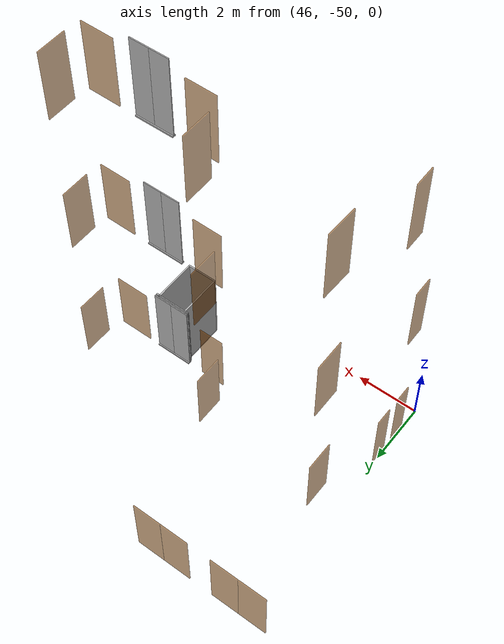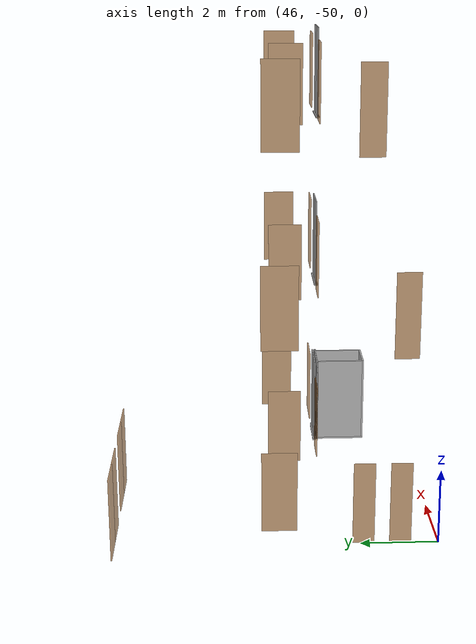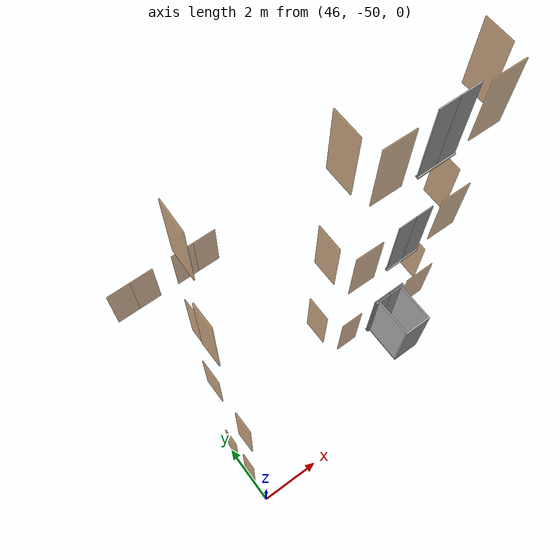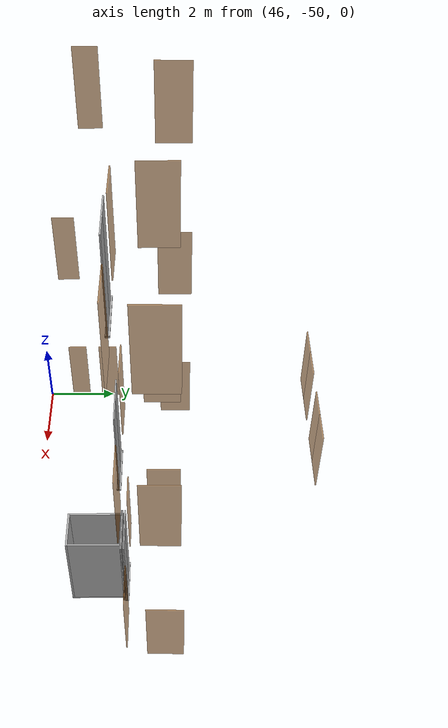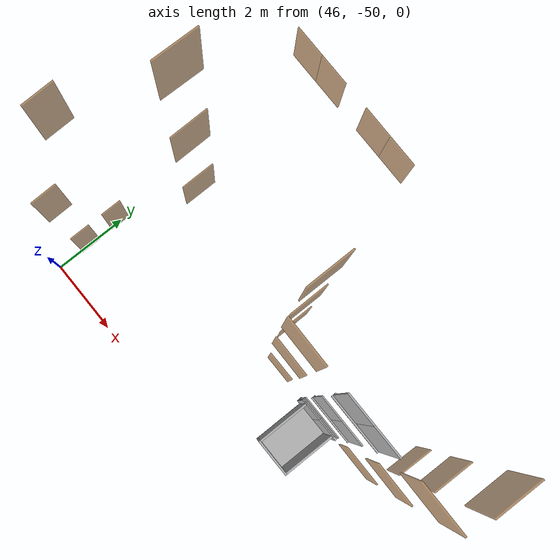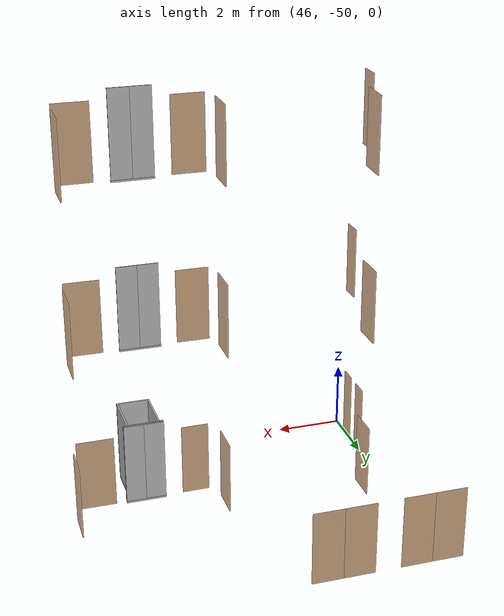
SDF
<sdf version="1.7">
 <world name="sim_world">
  <model name="p34">
   <pose>46.29385055257625 -41.70638647743774 0.0 0 0 0.0</pose>
   <link name="right">
    <pose>0.46290850641462455 0 1.11 0 0 0</pose>
    <visual name="right_visual">
     <geometry><box><size>0.9158170128292491 0.03 2.2</size></box></geometry>
     <material>
      <ambient>0.5 0.25 0 0.6</ambient>
      <diffuse>0.5 0.25 0 0.6</diffuse>
      <pbr><metal><metalness>0.0</metalness></metal></pbr>
     </material>
    </visual>
    <collision name="right_collision">
     <geometry><box><size>0.9158170128292491 0.03 2.2</size></box></geometry>
     <surface><contact><collide_bitmask>0x02</collide_bitmask></contact></surface>
    </collision>
    <inertial>
     <mass>50.0</mass>
     <inertia><ixx>20.17041666666667</ixx><iyy>23.66133667078121</iyy><izz>3.498420004114538</izz></inertia>
    </inertial>
   </link>
   <joint name="right_joint" type="revolute">
    <parent>world</parent>
    <child>right</child>
    <axis><xyz>0 0 -1</xyz><limit><lower>0</lower><upper>1.57</upper></limit></axis>
    <pose>0.46290850641462455 0 0 0 0 0</pose>
   </joint>
   <link name="left">
    <pose>-0.46290850641462455 0 1.11 0 0 0</pose>
    <visual name="left_visual">
     <geometry><box><size>0.9158170128292491 0.03 2.2</size></box></geometry>
     <material>
      <ambient>0.5 0.25 0 0.6</ambient>
      <diffuse>0.5 0.25 0 0.6</diffuse>
      <pbr><metal><metalness>0.0</metalness></metal></pbr>
     </material>
    </visual>
    <collision name="left_collision">
     <geometry><box><size>0.9158170128292491 0.03 2.2</size></box></geometry>
     <surface><contact><collide_bitmask>0x02</collide_bitmask></contact></surface>
    </collision>
    <inertial>
     <mass>50.0</mass>
     <inertia><ixx>20.17041666666667</ixx><iyy>23.66133667078121</iyy><izz>3.498420004114538</izz></inertia>
    </inertial>
   </link>
   <joint name="left_joint" type="revolute">
    <parent>world</parent>
    <child>left</child>
    <axis><xyz>0 0 -1</xyz><limit><lower>-1.57</lower><upper>0</upper></limit></axis>
    <pose>-0.46290850641462455 0 0 0 0 0</pose>
   </joint>
   <plugin name="register_component" filename="libregister_component.so">
    <component name="Door">
     <v_max_door>0.5</v_max_door>
     <a_max_door>0.3</a_max_door>
     <a_nom_door>0.15</a_nom_door>
     <dx_min_door>0.01</dx_min_door>
     <f_max_door>500.0</f_max_door>
     <ros_interface>true</ros_interface>
     <door name="p34" type="DoubleSwingDoor" left_joint_name="left_joint" right_joint_name="right_joint"/>
    </component>
   </plugin>
  </model>
  <model name="p35">
   <pose>48.90069553494715 -41.70801976237745 0.0 0 0 -0.0017695687612104296</pose>
   <link name="right">
    <pose>0.46149260427471434 0 1.11 0 0 0</pose>
    <visual name="right_visual">
     <geometry><box><size>0.9129852085494287 0.03 2.2</size></box></geometry>
     <material>
      <ambient>0.5 0.25 0 0.6</ambient>
      <diffuse>0.5 0.25 0 0.6</diffuse>
      <pbr><metal><metalness>0.0</metalness></metal></pbr>
     </material>
    </visual>
    <collision name="right_collision">
     <geometry><box><size>0.9129852085494287 0.03 2.2</size></box></geometry>
     <surface><contact><collide_bitmask>0x02</collide_bitmask></contact></surface>
    </collision>
    <inertial>
     <mass>50.0</mass>
     <inertia><ixx>20.17041666666667</ixx><iyy>23.639758295958522</iyy><izz>3.4768416292918496</izz></inertia>
    </inertial>
   </link>
   <joint name="right_joint" type="revolute">
    <parent>world</parent>
    <child>right</child>
    <axis><xyz>0 0 -1</xyz><limit><lower>0</lower><upper>1.57</upper></limit></axis>
    <pose>0.46149260427471434 0 0 0 0 0</pose>
   </joint>
   <link name="left">
    <pose>-0.46149260427471434 0 1.11 0 0 0</pose>
    <visual name="left_visual">
     <geometry><box><size>0.9129852085494287 0.03 2.2</size></box></geometry>
     <material>
      <ambient>0.5 0.25 0 0.6</ambient>
      <diffuse>0.5 0.25 0 0.6</diffuse>
      <pbr><metal><metalness>0.0</metalness></metal></pbr>
     </material>
    </visual>
    <collision name="left_collision">
     <geometry><box><size>0.9129852085494287 0.03 2.2</size></box></geometry>
     <surface><contact><collide_bitmask>0x02</collide_bitmask></contact></surface>
    </collision>
    <inertial>
     <mass>50.0</mass>
     <inertia><ixx>20.17041666666667</ixx><iyy>23.639758295958522</iyy><izz>3.4768416292918496</izz></inertia>
    </inertial>
   </link>
   <joint name="left_joint" type="revolute">
    <parent>world</parent>
    <child>left</child>
    <axis><xyz>0 0 -1</xyz><limit><lower>-1.57</lower><upper>0</upper></limit></axis>
    <pose>-0.46149260427471434 0 0 0 0 0</pose>
   </joint>
   <plugin name="register_component" filename="libregister_component.so">
    <component name="Door">
     <v_max_door>0.5</v_max_door>
     <a_max_door>0.3</a_max_door>
     <a_nom_door>0.15</a_nom_door>
     <dx_min_door>0.01</dx_min_door>
     <f_max_door>500.0</f_max_door>
     <ros_interface>true</ros_interface>
     <door name="p35" type="DoubleSwingDoor" left_joint_name="left_joint" right_joint_name="right_joint"/>
    </component>
   </plugin>
  </model>
  <model name="p41">
   <pose>55.26111818909074 -46.233263458860506 0.0 0 0 1.551279389900742</pose>
   <link name="right">
    <pose>0 0 1.11 0 0 0</pose>
    <visual name="right_visual">
     <geometry><box><size>0.9510212232707774 0.03 2.2</size></box></geometry>
     <material>
      <ambient>0.5 0.25 0 0.6</ambient>
      <diffuse>0.5 0.25 0 0.6</diffuse>
      <pbr><metal><metalness>0.0</metalness></metal></pbr>
     </material>
    </visual>
    <collision name="right_collision">
     <geometry><box><size>0.9510212232707774 0.03 2.2</size></box></geometry>
     <surface><contact><collide_bitmask>0x02</collide_bitmask></contact></surface>
    </collision>
    <inertial>
     <mass>50.0</mass>
     <inertia><ixx>20.17041666666667</ixx><iyy>23.935172362964362</iyy><izz>3.7722556962976914</izz></inertia>
    </inertial>
   </link>
   <joint name="right_joint" type="revolute">
    <parent>world</parent>
    <child>right</child>
    <axis><xyz>0 0 1</xyz><limit><lower>0</lower><upper>1.57</upper></limit></axis>
    <pose>0.4805106116353887 0 0 0 0 0</pose>
   </joint>
   <plugin name="register_component" filename="libregister_component.so">
    <component name="Door">
     <v_max_door>0.5</v_max_door>
     <a_max_door>0.3</a_max_door>
     <a_nom_door>0.15</a_nom_door>
     <dx_min_door>0.01</dx_min_door>
     <f_max_door>500.0</f_max_door>
     <ros_interface>true</ros_interface>
     <door name="p41" type="SwingDoor" left_joint_name="empty_joint" right_joint_name="right_joint"/>
    </component>
   </plugin>
  </model>
  <model name="p42">
   <pose>50.91122485259699 -46.28263977363636 0.0 0 0 1.5720512353876241</pose>
   <link name="right">
    <pose>0 0 1.11 0 0 0</pose>
    <visual name="right_visual">
     <geometry><box><size>0.9462168650381387 0.03 2.2</size></box></geometry>
     <material>
      <ambient>0.5 0.25 0 0.6</ambient>
      <diffuse>0.5 0.25 0 0.6</diffuse>
      <pbr><metal><metalness>0.0</metalness></metal></pbr>
     </material>
    </visual>
    <collision name="right_collision">
     <geometry><box><size>0.9462168650381387 0.03 2.2</size></box></geometry>
     <surface><contact><collide_bitmask>0x02</collide_bitmask></contact></surface>
    </collision>
    <inertial>
     <mass>50.0</mass>
     <inertia><ixx>20.17041666666667</ixx><iyy>23.89719314867752</iyy><izz>3.734276482010847</izz></inertia>
    </inertial>
   </link>
   <joint name="right_joint" type="revolute">
    <parent>world</parent>
    <child>right</child>
    <axis><xyz>0 0 -1</xyz><limit><lower>0</lower><upper>1.57</upper></limit></axis>
    <pose>0.47810843251906937 0 0 0 0 0</pose>
   </joint>
   <plugin name="register_component" filename="libregister_component.so">
    <component name="Door">
     <v_max_door>0.5</v_max_door>
     <a_max_door>0.3</a_max_door>
     <a_nom_door>0.15</a_nom_door>
     <dx_min_door>0.01</dx_min_door>
     <f_max_door>500.0</f_max_door>
     <ros_interface>true</ros_interface>
     <door name="p42" type="SwingDoor" left_joint_name="empty_joint" right_joint_name="right_joint"/>
    </component>
   </plugin>
  </model>
  <model name="p43">
   <pose>46.73681520547543 -45.95017184676013 0.0 0 0 1.5707963267948966</pose>
   <link name="right">
    <pose>0 0 1.11 0 0 0</pose>
    <visual name="right_visual">
     <geometry><box><size>0.9288166276554841 0.03 2.2</size></box></geometry>
     <material>
      <ambient>0.5 0.25 0 0.6</ambient>
      <diffuse>0.5 0.25 0 0.6</diffuse>
      <pbr><metal><metalness>0.0</metalness></metal></pbr>
     </material>
    </visual>
    <collision name="right_collision">
     <geometry><box><size>0.9288166276554841 0.03 2.2</size></box></geometry>
     <surface><contact><collide_bitmask>0x02</collide_bitmask></contact></surface>
    </collision>
    <inertial>
     <mass>50.0</mass>
     <inertia><ixx>20.17041666666667</ixx><iyy>23.761251365872113</iyy><izz>3.5983346992054432</izz></inertia>
    </inertial>
   </link>
   <joint name="right_joint" type="revolute">
    <parent>world</parent>
    <child>right</child>
    <axis><xyz>0 0 -1</xyz><limit><lower>0</lower><upper>1.57</upper></limit></axis>
    <pose>0.46940831382774206 0 0 0 0 0</pose>
   </joint>
   <plugin name="register_component" filename="libregister_component.so">
    <component name="Door">
     <v_max_door>0.5</v_max_door>
     <a_max_door>0.3</a_max_door>
     <a_nom_door>0.15</a_nom_door>
     <dx_min_door>0.01</dx_min_door>
     <f_max_door>500.0</f_max_door>
     <ros_interface>true</ros_interface>
     <door name="p43" type="SwingDoor" left_joint_name="empty_joint" right_joint_name="right_joint"/>
    </component>
   </plugin>
  </model>
  <model name="p45">
   <pose>46.03850256288706 -49.02026976978463 0.0 0 0 1.5670113036685058</pose>
   <link name="right">
    <pose>0 0 1.11 0 0 0</pose>
    <visual name="right_visual">
     <geometry><box><size>0.5536095600425348 0.03 2.2</size></box></geometry>
     <material>
      <ambient>0.5 0.25 0 0.6</ambient>
      <diffuse>0.5 0.25 0 0.6</diffuse>
      <pbr><metal><metalness>0.0</metalness></metal></pbr>
     </material>
    </visual>
    <collision name="right_collision">
     <geometry><box><size>0.5536095600425348 0.03 2.2</size></box></geometry>
     <surface><contact><collide_bitmask>0x02</collide_bitmask></contact></surface>
    </collision>
    <inertial>
     <mass>50.0</mass>
     <inertia><ixx>20.17041666666667</ixx><iyy>21.443681437377045</iyy><izz>1.2807647707103709</izz></inertia>
    </inertial>
   </link>
   <joint name="right_joint" type="revolute">
    <parent>world</parent>
    <child>right</child>
    <axis><xyz>0 0 -1</xyz><limit><lower>0</lower><upper>1.57</upper></limit></axis>
    <pose>0.2818047800212674 0 0 0 0 0</pose>
   </joint>
   <plugin name="register_component" filename="libregister_component.so">
    <component name="Door">
     <v_max_door>0.5</v_max_door>
     <a_max_door>0.3</a_max_door>
     <a_nom_door>0.15</a_nom_door>
     <dx_min_door>0.01</dx_min_door>
     <f_max_door>500.0</f_max_door>
     <ros_interface>true</ros_interface>
     <door name="p45" type="SwingDoor" left_joint_name="empty_joint" right_joint_name="right_joint"/>
    </component>
   </plugin>
  </model>
  <model name="p46">
   <pose>46.04051361441146 -48.0743755740571 0.0 0 0 1.5674640512192042</pose>
   <link name="right">
    <pose>0 0 1.11 0 0 0</pose>
    <visual name="right_visual">
     <geometry><box><size>0.556830796609936 0.03 2.2</size></box></geometry>
     <material>
      <ambient>0.5 0.25 0 0.6</ambient>
      <diffuse>0.5 0.25 0 0.6</diffuse>
      <pbr><metal><metalness>0.0</metalness></metal></pbr>
     </material>
    </visual>
    <collision name="right_collision">
     <geometry><box><size>0.556830796609936 0.03 2.2</size></box></geometry>
     <surface><contact><collide_bitmask>0x02</collide_bitmask></contact></surface>
    </collision>
    <inertial>
     <mass>50.0</mass>
     <inertia><ixx>20.17041666666667</ixx><iyy>21.458585566888573</iyy><izz>1.2956689002218995</izz></inertia>
    </inertial>
   </link>
   <joint name="right_joint" type="revolute">
    <parent>world</parent>
    <child>right</child>
    <axis><xyz>0 0 -1</xyz><limit><lower>0</lower><upper>1.57</upper></limit></axis>
    <pose>0.283415398304968 0 0 0 0 0</pose>
   </joint>
   <plugin name="register_component" filename="libregister_component.so">
    <component name="Door">
     <v_max_door>0.5</v_max_door>
     <a_max_door>0.3</a_max_door>
     <a_nom_door>0.15</a_nom_door>
     <dx_min_door>0.01</dx_min_door>
     <f_max_door>500.0</f_max_door>
     <ros_interface>true</ros_interface>
     <door name="p46" type="SwingDoor" left_joint_name="empty_joint" right_joint_name="right_joint"/>
    </component>
   </plugin>
  </model>
  <model name="door3">
   <pose>54.548728185831564 -47.24773340049187 0.0 0 0 -0.003472277558024666</pose>
   <link name="right">
    <pose>0 0 1.11 0 0 0</pose>
    <visual name="right_visual">
     <geometry><box><size>1.1035514967360425 0.03 2.2</size></box></geometry>
     <material>
      <ambient>0.5 0.25 0 0.6</ambient>
      <diffuse>0.5 0.25 0 0.6</diffuse>
      <pbr><metal><metalness>0.0</metalness></metal></pbr>
     </material>
    </visual>
    <collision name="right_collision">
     <geometry><box><size>1.1035514967360425 0.03 2.2</size></box></geometry>
     <surface><contact><collide_bitmask>0x02</collide_bitmask></contact></surface>
    </collision>
    <inertial>
     <mass>50.0</mass>
     <inertia><ixx>20.17041666666667</ixx><iyy>25.240941274784834</iyy><izz>5.078024608118165</izz></inertia>
    </inertial>
   </link>
   <joint name="right_joint" type="revolute">
    <parent>world</parent>
    <child>right</child>
    <axis><xyz>0 0 1</xyz><limit><lower>0</lower><upper>1.57</upper></limit></axis>
    <pose>0.5567757483680212 0 0 0 0 0</pose>
   </joint>
   <plugin name="register_component" filename="libregister_component.so">
    <component name="Door">
     <v_max_door>0.5</v_max_door>
     <a_max_door>0.3</a_max_door>
     <a_nom_door>0.15</a_nom_door>
     <dx_min_door>0.01</dx_min_door>
     <f_max_door>500.0</f_max_door>
     <ros_interface>true</ros_interface>
     <door name="door3" type="SwingDoor" left_joint_name="empty_joint" right_joint_name="right_joint"/>
    </component>
   </plugin>
  </model>
  <model name="door4">
   <pose>51.56220556427961 -47.26404402832512 0.0 0 0 -3.140288306503404</pose>
   <link name="right">
    <pose>0 0 1.11 0 0 0</pose>
    <visual name="right_visual">
     <geometry><box><size>0.807754243674289 0.03 2.2</size></box></geometry>
     <material>
      <ambient>0.5 0.25 0 0.6</ambient>
      <diffuse>0.5 0.25 0 0.6</diffuse>
      <pbr><metal><metalness>0.0</metalness></metal></pbr>
     </material>
    </visual>
    <collision name="right_collision">
     <geometry><box><size>0.807754243674289 0.03 2.2</size></box></geometry>
     <surface><contact><collide_bitmask>0x02</collide_bitmask></contact></surface>
    </collision>
    <inertial>
     <mass>50.0</mass>
     <inertia><ixx>20.17041666666667</ixx><iyy>22.885278825724267</iyy><izz>2.722362159057595</izz></inertia>
    </inertial>
   </link>
   <joint name="right_joint" type="revolute">
    <parent>world</parent>
    <child>right</child>
    <axis><xyz>0 0 -1</xyz><limit><lower>0</lower><upper>1.57</upper></limit></axis>
    <pose>0.40887712183714453 0 0 0 0 0</pose>
   </joint>
   <plugin name="register_component" filename="libregister_component.so">
    <component name="Door">
     <v_max_door>0.5</v_max_door>
     <a_max_door>0.3</a_max_door>
     <a_nom_door>0.15</a_nom_door>
     <dx_min_door>0.01</dx_min_door>
     <f_max_door>500.0</f_max_door>
     <ros_interface>true</ros_interface>
     <door name="door4" type="SwingDoor" left_joint_name="empty_joint" right_joint_name="right_joint"/>
    </component>
   </plugin>
  </model>
  <model name="puerta2">
   <pose>50.90441477776904 -46.285764002202406 5.0 0 0 1.568592011167526</pose>
   <link name="right">
    <pose>0 0 1.11 0 0 0</pose>
    <visual name="right_visual">
     <geometry><box><size>0.9327644348890854 0.03 2.2</size></box></geometry>
     <material>
      <ambient>0.5 0.25 0 0.6</ambient>
      <diffuse>0.5 0.25 0 0.6</diffuse>
      <pbr><metal><metalness>0.0</metalness></metal></pbr>
     </material>
    </visual>
    <collision name="right_collision">
     <geometry><box><size>0.9327644348890854 0.03 2.2</size></box></geometry>
     <surface><contact><collide_bitmask>0x02</collide_bitmask></contact></surface>
    </collision>
    <inertial>
     <mass>50.0</mass>
     <inertia><ixx>20.17041666666667</ixx><iyy>23.791872879141483</iyy><izz>3.6289562124748125</izz></inertia>
    </inertial>
   </link>
   <joint name="right_joint" type="revolute">
    <parent>world</parent>
    <child>right</child>
    <axis><xyz>0 0 -1</xyz><limit><lower>0</lower><upper>1.57</upper></limit></axis>
    <pose>0.47138221744454273 0 0 0 0 0</pose>
   </joint>
   <plugin name="register_component" filename="libregister_component.so">
    <component name="Door">
     <v_max_door>0.5</v_max_door>
     <a_max_door>0.3</a_max_door>
     <a_nom_door>0.15</a_nom_door>
     <dx_min_door>0.01</dx_min_door>
     <f_max_door>500.0</f_max_door>
     <ros_interface>true</ros_interface>
     <door name="puerta2" type="SwingDoor" left_joint_name="empty_joint" right_joint_name="right_joint"/>
    </component>
   </plugin>
  </model>
  <model name="puerta3">
   <pose>46.71412840877268 -45.94401524613693 5.0 0 0 1.5761767900368553</pose>
   <link name="right">
    <pose>0 0 1.11 0 0 0</pose>
    <visual name="right_visual">
     <geometry><box><size>0.9465985025561342 0.03 2.2</size></box></geometry>
     <material>
      <ambient>0.5 0.25 0 0.6</ambient>
      <diffuse>0.5 0.25 0 0.6</diffuse>
      <pbr><metal><metalness>0.0</metalness></metal></pbr>
     </material>
    </visual>
    <collision name="right_collision">
     <geometry><box><size>0.9465985025561342 0.03 2.2</size></box></geometry>
     <surface><contact><collide_bitmask>0x02</collide_bitmask></contact></surface>
    </collision>
    <inertial>
     <mass>50.0</mass>
     <inertia><ixx>20.17041666666667</ixx><iyy>23.90020302100632</iyy><izz>3.7372863543396484</izz></inertia>
    </inertial>
   </link>
   <joint name="right_joint" type="revolute">
    <parent>world</parent>
    <child>right</child>
    <axis><xyz>0 0 -1</xyz><limit><lower>0</lower><upper>1.57</upper></limit></axis>
    <pose>0.4782992512780671 0 0 0 0 0</pose>
   </joint>
   <plugin name="register_component" filename="libregister_component.so">
    <component name="Door">
     <v_max_door>0.5</v_max_door>
     <a_max_door>0.3</a_max_door>
     <a_nom_door>0.15</a_nom_door>
     <dx_min_door>0.01</dx_min_door>
     <f_max_door>500.0</f_max_door>
     <ros_interface>true</ros_interface>
     <door name="puerta3" type="SwingDoor" left_joint_name="empty_joint" right_joint_name="right_joint"/>
    </component>
   </plugin>
  </model>
  <model name="puerta5">
   <pose>46.03935703767312 -49.04455369702251 5.0 0 0 1.5847251683538743</pose>
   <link name="right">
    <pose>0 0 1.11 0 0 0</pose>
    <visual name="right_visual">
     <geometry><box><size>0.6143666957321702 0.03 2.2</size></box></geometry>
     <material>
      <ambient>0.5 0.25 0 0.6</ambient>
      <diffuse>0.5 0.25 0 0.6</diffuse>
      <pbr><metal><metalness>0.0</metalness></metal></pbr>
     </material>
    </visual>
    <collision name="right_collision">
     <geometry><box><size>0.6143666957321702 0.03 2.2</size></box></geometry>
     <surface><contact><collide_bitmask>0x02</collide_bitmask></contact></surface>
    </collision>
    <inertial>
     <mass>50.0</mass>
     <inertia><ixx>20.17041666666667</ixx><iyy>21.73936015343694</iyy><izz>1.5764434867702708</izz></inertia>
    </inertial>
   </link>
   <joint name="right_joint" type="revolute">
    <parent>world</parent>
    <child>right</child>
    <axis><xyz>0 0 -1</xyz><limit><lower>0</lower><upper>1.57</upper></limit></axis>
    <pose>0.3121833478660851 0 0 0 0 0</pose>
   </joint>
   <plugin name="register_component" filename="libregister_component.so">
    <component name="Door">
     <v_max_door>0.5</v_max_door>
     <a_max_door>0.3</a_max_door>
     <a_nom_door>0.15</a_nom_door>
     <dx_min_door>0.01</dx_min_door>
     <f_max_door>500.0</f_max_door>
     <ros_interface>true</ros_interface>
     <door name="puerta5" type="SwingDoor" left_joint_name="empty_joint" right_joint_name="right_joint"/>
    </component>
   </plugin>
  </model>
  <model name="puerta79">
   <pose>51.53598210711936 -47.25297608389258 5.0 0 0 3.1287615406238185</pose>
   <link name="right">
    <pose>0 0 1.11 0 0 0</pose>
    <visual name="right_visual">
     <geometry><box><size>0.9468438838230657 0.03 2.2</size></box></geometry>
     <material>
      <ambient>0.5 0.25 0 0.6</ambient>
      <diffuse>0.5 0.25 0 0.6</diffuse>
      <pbr><metal><metalness>0.0</metalness></metal></pbr>
     </material>
    </visual>
    <collision name="right_collision">
     <geometry><box><size>0.9468438838230657 0.03 2.2</size></box></geometry>
     <surface><contact><collide_bitmask>0x02</collide_bitmask></contact></surface>
    </collision>
    <inertial>
     <mass>50.0</mass>
     <inertia><ixx>20.17041666666667</ixx><iyy>23.902138918054785</iyy><izz>3.7392222513881137</izz></inertia>
    </inertial>
   </link>
   <joint name="right_joint" type="revolute">
    <parent>world</parent>
    <child>right</child>
    <axis><xyz>0 0 -1</xyz><limit><lower>0</lower><upper>1.57</upper></limit></axis>
    <pose>0.47842194191153287 0 0 0 0 0</pose>
   </joint>
   <plugin name="register_component" filename="libregister_component.so">
    <component name="Door">
     <v_max_door>0.5</v_max_door>
     <a_max_door>0.3</a_max_door>
     <a_nom_door>0.15</a_nom_door>
     <dx_min_door>0.01</dx_min_door>
     <f_max_door>500.0</f_max_door>
     <ros_interface>true</ros_interface>
     <door name="puerta79" type="SwingDoor" left_joint_name="empty_joint" right_joint_name="right_joint"/>
    </component>
   </plugin>
  </model>
  <model name="puerta80">
   <pose>54.661752131514476 -47.246197021934165 5.0 0 0 -0.009632428765570475</pose>
   <link name="right">
    <pose>0 0 1.11 0 0 0</pose>
    <visual name="right_visual">
     <geometry><box><size>1.012040966651573 0.03 2.2</size></box></geometry>
     <material>
      <ambient>0.5 0.25 0 0.6</ambient>
      <diffuse>0.5 0.25 0 0.6</diffuse>
      <pbr><metal><metalness>0.0</metalness></metal></pbr>
     </material>
    </visual>
    <collision name="right_collision">
     <geometry><box><size>1.012040966651573 0.03 2.2</size></box></geometry>
     <surface><contact><collide_bitmask>0x02</collide_bitmask></contact></surface>
    </collision>
    <inertial>
     <mass>50.0</mass>
     <inertia><ixx>20.17041666666667</ixx><iyy>24.434278825754383</iyy><izz>4.27136215908771</izz></inertia>
    </inertial>
   </link>
   <joint name="right_joint" type="revolute">
    <parent>world</parent>
    <child>right</child>
    <axis><xyz>0 0 1</xyz><limit><lower>0</lower><upper>1.57</upper></limit></axis>
    <pose>0.5110204833257865 0 0 0 0 0</pose>
   </joint>
   <plugin name="register_component" filename="libregister_component.so">
    <component name="Door">
     <v_max_door>0.5</v_max_door>
     <a_max_door>0.3</a_max_door>
     <a_nom_door>0.15</a_nom_door>
     <dx_min_door>0.01</dx_min_door>
     <f_max_door>500.0</f_max_door>
     <ros_interface>true</ros_interface>
     <door name="puerta80" type="SwingDoor" left_joint_name="empty_joint" right_joint_name="right_joint"/>
    </component>
   </plugin>
  </model>
  <model name="puertaX1">
   <pose>55.23787583629162 -46.29510173818433 5.0 0 0 1.5595580764247505</pose>
   <link name="right">
    <pose>0 0 1.11 0 0 0</pose>
    <visual name="right_visual">
     <geometry><box><size>0.9225990685787344 0.03 2.2</size></box></geometry>
     <material>
      <ambient>0.5 0.25 0 0.6</ambient>
      <diffuse>0.5 0.25 0 0.6</diffuse>
      <pbr><metal><metalness>0.0</metalness></metal></pbr>
     </material>
    </visual>
    <collision name="right_collision">
     <geometry><box><size>0.9225990685787344 0.03 2.2</size></box></geometry>
     <surface><contact><collide_bitmask>0x02</collide_bitmask></contact></surface>
    </collision>
    <inertial>
     <mass>50.0</mass>
     <inertia><ixx>20.17041666666667</ixx><iyy>23.71328767225979</iyy><izz>3.550371005593118</izz></inertia>
    </inertial>
   </link>
   <joint name="right_joint" type="revolute">
    <parent>world</parent>
    <child>right</child>
    <axis><xyz>0 0 1</xyz><limit><lower>0</lower><upper>1.57</upper></limit></axis>
    <pose>0.4662995342893672 0 0 0 0 0</pose>
   </joint>
   <plugin name="register_component" filename="libregister_component.so">
    <component name="Door">
     <v_max_door>0.5</v_max_door>
     <a_max_door>0.3</a_max_door>
     <a_nom_door>0.15</a_nom_door>
     <dx_min_door>0.01</dx_min_door>
     <f_max_door>500.0</f_max_door>
     <ros_interface>true</ros_interface>
     <door name="puertaX1" type="SwingDoor" left_joint_name="empty_joint" right_joint_name="right_joint"/>
    </component>
   </plugin>
  </model>
  <model name="puerta98">
   <pose>50.904524964211674 -46.28589813422583 10.0 0 0 1.5685937216444164</pose>
   <link name="right">
    <pose>0 0 1.11 0 0 0</pose>
    <visual name="right_visual">
     <geometry><box><size>0.9327754535484623 0.03 2.2</size></box></geometry>
     <material>
      <ambient>0.5 0.25 0 0.6</ambient>
      <diffuse>0.5 0.25 0 0.6</diffuse>
      <pbr><metal><metalness>0.0</metalness></metal></pbr>
     </material>
    </visual>
    <collision name="right_collision">
     <geometry><box><size>0.9327754535484623 0.03 2.2</size></box></geometry>
     <surface><contact><collide_bitmask>0x02</collide_bitmask></contact></surface>
    </collision>
    <inertial>
     <mass>50.0</mass>
     <inertia><ixx>20.17041666666667</ixx><iyy>23.79195852809392</iyy><izz>3.629041861427248</izz></inertia>
    </inertial>
   </link>
   <joint name="right_joint" type="revolute">
    <parent>world</parent>
    <child>right</child>
    <axis><xyz>0 0 -1</xyz><limit><lower>0</lower><upper>1.57</upper></limit></axis>
    <pose>0.47138772677423113 0 0 0 0 0</pose>
   </joint>
   <plugin name="register_component" filename="libregister_component.so">
    <component name="Door">
     <v_max_door>0.5</v_max_door>
     <a_max_door>0.3</a_max_door>
     <a_nom_door>0.15</a_nom_door>
     <dx_min_door>0.01</dx_min_door>
     <f_max_door>500.0</f_max_door>
     <ros_interface>true</ros_interface>
     <door name="puerta98" type="SwingDoor" left_joint_name="empty_joint" right_joint_name="right_joint"/>
    </component>
   </plugin>
  </model>
  <model name="puerta99">
   <pose>46.729836886624746 -45.954773548275355 10.0 0 0 1.5428493856564143</pose>
   <link name="right">
    <pose>0 0 1.11 0 0 0</pose>
    <visual name="right_visual">
     <geometry><box><size>0.9257192230852094 0.03 2.2</size></box></geometry>
     <material>
      <ambient>0.5 0.25 0 0.6</ambient>
      <diffuse>0.5 0.25 0 0.6</diffuse>
      <pbr><metal><metalness>0.0</metalness></metal></pbr>
     </material>
    </visual>
    <collision name="right_collision">
     <geometry><box><size>0.9257192230852094 0.03 2.2</size></box></geometry>
     <surface><contact><collide_bitmask>0x02</collide_bitmask></contact></surface>
    </collision>
    <inertial>
     <mass>50.0</mass>
     <inertia><ixx>20.17041666666667</ixx><iyy>23.73731699995619</iyy><izz>3.5744003332895153</izz></inertia>
    </inertial>
   </link>
   <joint name="right_joint" type="revolute">
    <parent>world</parent>
    <child>right</child>
    <axis><xyz>0 0 -1</xyz><limit><lower>0</lower><upper>1.57</upper></limit></axis>
    <pose>0.4678596115426047 0 0 0 0 0</pose>
   </joint>
   <plugin name="register_component" filename="libregister_component.so">
    <component name="Door">
     <v_max_door>0.5</v_max_door>
     <a_max_door>0.3</a_max_door>
     <a_nom_door>0.15</a_nom_door>
     <dx_min_door>0.01</dx_min_door>
     <f_max_door>500.0</f_max_door>
     <ros_interface>true</ros_interface>
     <door name="puerta99" type="SwingDoor" left_joint_name="empty_joint" right_joint_name="right_joint"/>
    </component>
   </plugin>
  </model>
  <model name="puerta100">
   <pose>46.031698010373894 -48.07843187180002 10.0 0 0 1.5812657956624059</pose>
   <link name="right">
    <pose>0 0 1.11 0 0 0</pose>
    <visual name="right_visual">
     <geometry><box><size>0.6234828103584112 0.03 2.2</size></box></geometry>
     <material>
      <ambient>0.5 0.25 0 0.6</ambient>
      <diffuse>0.5 0.25 0 0.6</diffuse>
      <pbr><metal><metalness>0.0</metalness></metal></pbr>
     </material>
    </visual>
    <collision name="right_collision">
     <geometry><box><size>0.6234828103584112 0.03 2.2</size></box></geometry>
     <surface><contact><collide_bitmask>0x02</collide_bitmask></contact></surface>
    </collision>
    <inertial>
     <mass>50.0</mass>
     <inertia><ixx>20.17041666666667</ixx><iyy>21.786378395051766</iyy><izz>1.6234617283850943</izz></inertia>
    </inertial>
   </link>
   <joint name="right_joint" type="revolute">
    <parent>world</parent>
    <child>right</child>
    <axis><xyz>0 0 -1</xyz><limit><lower>0</lower><upper>1.57</upper></limit></axis>
    <pose>0.3167414051792056 0 0 0 0 0</pose>
   </joint>
   <plugin name="register_component" filename="libregister_component.so">
    <component name="Door">
     <v_max_door>0.5</v_max_door>
     <a_max_door>0.3</a_max_door>
     <a_nom_door>0.15</a_nom_door>
     <dx_min_door>0.01</dx_min_door>
     <f_max_door>500.0</f_max_door>
     <ros_interface>true</ros_interface>
     <door name="puerta100" type="SwingDoor" left_joint_name="empty_joint" right_joint_name="right_joint"/>
    </component>
   </plugin>
  </model>
  <model name="puerta153">
   <pose>51.53610132948449 -47.2531204400145 10.0 0 0 3.1287632511007004</pose>
   <link name="right">
    <pose>0 0 1.11 0 0 0</pose>
    <visual name="right_visual">
     <geometry><box><size>0.9468550670375134 0.03 2.2</size></box></geometry>
     <material>
      <ambient>0.5 0.25 0 0.6</ambient>
      <diffuse>0.5 0.25 0 0.6</diffuse>
      <pbr><metal><metalness>0.0</metalness></metal></pbr>
     </material>
    </visual>
    <collision name="right_collision">
     <geometry><box><size>0.9468550670375134 0.03 2.2</size></box></geometry>
     <surface><contact><collide_bitmask>0x02</collide_bitmask></contact></surface>
    </collision>
    <inertial>
     <mass>50.0</mass>
     <inertia><ixx>20.17041666666667</ixx><iyy>23.902227158227564</iyy><izz>3.739310491560892</izz></inertia>
    </inertial>
   </link>
   <joint name="right_joint" type="revolute">
    <parent>world</parent>
    <child>right</child>
    <axis><xyz>0 0 -1</xyz><limit><lower>0</lower><upper>1.57</upper></limit></axis>
    <pose>0.4784275335187567 0 0 0 0 0</pose>
   </joint>
   <plugin name="register_component" filename="libregister_component.so">
    <component name="Door">
     <v_max_door>0.5</v_max_door>
     <a_max_door>0.3</a_max_door>
     <a_nom_door>0.15</a_nom_door>
     <dx_min_door>0.01</dx_min_door>
     <f_max_door>500.0</f_max_door>
     <ros_interface>true</ros_interface>
     <door name="puerta153" type="SwingDoor" left_joint_name="empty_joint" right_joint_name="right_joint"/>
    </component>
   </plugin>
  </model>
  <model name="puerta154">
   <pose>54.66190787504836 -47.24633595220523 10.0 0 0 -0.009630718288678595</pose>
   <link name="right">
    <pose>0 0 1.11 0 0 0</pose>
    <visual name="right_visual">
     <geometry><box><size>1.0120529118638444 0.03 2.2</size></box></geometry>
     <material>
      <ambient>0.5 0.25 0 0.6</ambient>
      <diffuse>0.5 0.25 0 0.6</diffuse>
      <pbr><metal><metalness>0.0</metalness></metal></pbr>
     </material>
    </visual>
    <collision name="right_collision">
     <geometry><box><size>1.0120529118638444 0.03 2.2</size></box></geometry>
     <surface><contact><collide_bitmask>0x02</collide_bitmask></contact></surface>
    </collision>
    <inertial>
     <mass>50.0</mass>
     <inertia><ixx>20.17041666666667</ixx><iyy>24.434379568383697</iyy><izz>4.271462901717026</izz></inertia>
    </inertial>
   </link>
   <joint name="right_joint" type="revolute">
    <parent>world</parent>
    <child>right</child>
    <axis><xyz>0 0 1</xyz><limit><lower>0</lower><upper>1.57</upper></limit></axis>
    <pose>0.5110264559319222 0 0 0 0 0</pose>
   </joint>
   <plugin name="register_component" filename="libregister_component.so">
    <component name="Door">
     <v_max_door>0.5</v_max_door>
     <a_max_door>0.3</a_max_door>
     <a_nom_door>0.15</a_nom_door>
     <dx_min_door>0.01</dx_min_door>
     <f_max_door>500.0</f_max_door>
     <ros_interface>true</ros_interface>
     <door name="puerta154" type="SwingDoor" left_joint_name="empty_joint" right_joint_name="right_joint"/>
    </component>
   </plugin>
  </model>
  <model name="puerta172">
   <pose>55.2380366864861 -46.29522856697193 10.0 0 0 1.5595597869016329</pose>
   <link name="right">
    <pose>0 0 1.11 0 0 0</pose>
    <visual name="right_visual">
     <geometry><box><size>0.9226099684293319 0.03 2.2</size></box></geometry>
     <material>
      <ambient>0.5 0.25 0 0.6</ambient>
      <diffuse>0.5 0.25 0 0.6</diffuse>
      <pbr><metal><metalness>0.0</metalness></metal></pbr>
     </material>
    </visual>
    <collision name="right_collision">
     <geometry><box><size>0.9226099684293319 0.03 2.2</size></box></geometry>
     <surface><contact><collide_bitmask>0x02</collide_bitmask></contact></surface>
    </collision>
    <inertial>
     <mass>50.0</mass>
     <inertia><ixx>20.17041666666667</ixx><iyy>23.713371474354894</iyy><izz>3.55045480768822</izz></inertia>
    </inertial>
   </link>
   <joint name="right_joint" type="revolute">
    <parent>world</parent>
    <child>right</child>
    <axis><xyz>0 0 1</xyz><limit><lower>0</lower><upper>1.57</upper></limit></axis>
    <pose>0.46630498421466593 0 0 0 0 0</pose>
   </joint>
   <plugin name="register_component" filename="libregister_component.so">
    <component name="Door">
     <v_max_door>0.5</v_max_door>
     <a_max_door>0.3</a_max_door>
     <a_nom_door>0.15</a_nom_door>
     <dx_min_door>0.01</dx_min_door>
     <f_max_door>500.0</f_max_door>
     <ros_interface>true</ros_interface>
     <door name="puerta172" type="SwingDoor" left_joint_name="empty_joint" right_joint_name="right_joint"/>
    </component>
   </plugin>
  </model>
  <model name="ShaftDoor_left_common_lift_L0_left_common_lift_door">
   <pose>53.08019533356709 -47.28836599552725 0.0 0 0 0.0</pose>
   <link name="right_door">
    <pose>0.3 0 1.25 0 0 0</pose>
    <visual name="right_door_visual">
     <geometry><box><size>0.6 0.03 2.5</size></box></geometry>
     <material>
      <ambient>0.5 0.5 0.5 1</ambient>
      <diffuse>0.7 0.7 0.7 1</diffuse>
      <specular>0.6 0.6 0.6 1</specular>
      <emissive>0.1 0.1 0.1 1</emissive>
     </material>
    </visual>
    <collision name="right_door_collision">
     <geometry><box><size>0.6 0.03 2.5</size></box></geometry>
     <surface><contact><collide_bitmask>0x02</collide_bitmask></contact></surface>
    </collision>
   </link>
   <link name="left_door">
    <pose>-0.3 0 1.25 0 0 0</pose>
    <visual name="left_door_visual">
     <geometry><box><size>0.6 0.03 2.5</size></box></geometry>
     <material>
      <ambient>0.5 0.5 0.5 1</ambient>
      <diffuse>0.7 0.7 0.7 1</diffuse>
      <specular>0.6 0.6 0.6 1</specular>
      <emissive>0.1 0.1 0.1 1</emissive>
     </material>
    </visual>
    <collision name="left_door_collision">
     <geometry><box><size>0.6 0.03 2.5</size></box></geometry>
     <surface><contact><collide_bitmask>0x02</collide_bitmask></contact></surface>
    </collision>
   </link>
   <joint name="right_joint" type="prismatic">
    <parent>world</parent>
    <child>right_door</child>
    <axis><xyz>1 0 0</xyz><limit><lower>0</lower><upper>0.6</upper></limit></axis>
   </joint>
   <joint name="left_joint" type="prismatic">
    <parent>world</parent>
    <child>left_door</child>
    <axis><xyz>1 0 0</xyz><limit><lower>-0.6</lower><upper>0</upper></limit></axis>
   </joint>
   <link name="ramp">
    <pose>0 0 -0.025 0 0 0</pose>
    <visual name="ramp_visual">
     <geometry><box><size>1.2 0.1 0.05</size></box></geometry>
     <material>
      <ambient>0.5 0.5 0.5 1</ambient>
      <diffuse>0.7 0.7 0.7 1</diffuse>
      <specular>0.6 0.6 0.6 1</specular>
      <emissive>0.1 0.1 0.1 1</emissive>
     </material>
    </visual>
    <collision name="ramp_collision">
     <geometry><box><size>1.2 0.1 0.05</size></box></geometry>
     <surface><contact><collide_bitmask>0x02</collide_bitmask></contact></surface>
    </collision>
   </link>
   <joint name="ramp_joint" type="fixed"><parent>world</parent><child>ramp</child></joint>
   <plugin name="register_component" filename="libregister_component.so">
    <component name="Door">
     <v_max_door>0.3</v_max_door>
     <a_max_door>0.2</a_max_door>
     <a_nom_door>0.1</a_nom_door>
     <dx_min_door>0.0001</dx_min_door>
     <f_max_door>35.0</f_max_door>
     <door left_joint_name="left_joint" name="ShaftDoor_left_common_lift_L0_left_common_lift_door" right_joint_name="right_joint" type="DoubleSlidingDoor"/>
    </component>
   </plugin>
  </model>
  <model name="ShaftDoor_left_common_lift_L1_left_common_lift_door">
   <pose>53.08019533356709 -47.28836599552725 5.0 0 0 0.0</pose>
   <link name="right_door">
    <pose>0.3 0 1.25 0 0 0</pose>
    <visual name="right_door_visual">
     <geometry><box><size>0.6 0.03 2.5</size></box></geometry>
     <material>
      <ambient>0.5 0.5 0.5 1</ambient>
      <diffuse>0.7 0.7 0.7 1</diffuse>
      <specular>0.6 0.6 0.6 1</specular>
      <emissive>0.1 0.1 0.1 1</emissive>
     </material>
    </visual>
    <collision name="right_door_collision">
     <geometry><box><size>0.6 0.03 2.5</size></box></geometry>
     <surface><contact><collide_bitmask>0x02</collide_bitmask></contact></surface>
    </collision>
   </link>
   <link name="left_door">
    <pose>-0.3 0 1.25 0 0 0</pose>
    <visual name="left_door_visual">
     <geometry><box><size>0.6 0.03 2.5</size></box></geometry>
     <material>
      <ambient>0.5 0.5 0.5 1</ambient>
      <diffuse>0.7 0.7 0.7 1</diffuse>
      <specular>0.6 0.6 0.6 1</specular>
      <emissive>0.1 0.1 0.1 1</emissive>
     </material>
    </visual>
    <collision name="left_door_collision">
     <geometry><box><size>0.6 0.03 2.5</size></box></geometry>
     <surface><contact><collide_bitmask>0x02</collide_bitmask></contact></surface>
    </collision>
   </link>
   <joint name="right_joint" type="prismatic">
    <parent>world</parent>
    <child>right_door</child>
    <axis><xyz>1 0 0</xyz><limit><lower>0</lower><upper>0.6</upper></limit></axis>
   </joint>
   <joint name="left_joint" type="prismatic">
    <parent>world</parent>
    <child>left_door</child>
    <axis><xyz>1 0 0</xyz><limit><lower>-0.6</lower><upper>0</upper></limit></axis>
   </joint>
   <link name="ramp">
    <pose>0 0 -0.025 0 0 0</pose>
    <visual name="ramp_visual">
     <geometry><box><size>1.2 0.1 0.05</size></box></geometry>
     <material>
      <ambient>0.5 0.5 0.5 1</ambient>
      <diffuse>0.7 0.7 0.7 1</diffuse>
      <specular>0.6 0.6 0.6 1</specular>
      <emissive>0.1 0.1 0.1 1</emissive>
     </material>
    </visual>
    <collision name="ramp_collision">
     <geometry><box><size>1.2 0.1 0.05</size></box></geometry>
     <surface><contact><collide_bitmask>0x02</collide_bitmask></contact></surface>
    </collision>
   </link>
   <joint name="ramp_joint" type="fixed"><parent>world</parent><child>ramp</child></joint>
   <plugin name="register_component" filename="libregister_component.so">
    <component name="Door">
     <v_max_door>0.3</v_max_door>
     <a_max_door>0.2</a_max_door>
     <a_nom_door>0.1</a_nom_door>
     <dx_min_door>0.0001</dx_min_door>
     <f_max_door>35.0</f_max_door>
     <door left_joint_name="left_joint" name="ShaftDoor_left_common_lift_L1_left_common_lift_door" right_joint_name="right_joint" type="DoubleSlidingDoor"/>
    </component>
   </plugin>
  </model>
  <model name="ShaftDoor_left_common_lift_L2_left_common_lift_door">
   <pose>53.08019533356709 -47.28836599552725 10.0 0 0 0.0</pose>
   <link name="right_door">
    <pose>0.3 0 1.25 0 0 0</pose>
    <visual name="right_door_visual">
     <geometry><box><size>0.6 0.03 2.5</size></box></geometry>
     <material>
      <ambient>0.5 0.5 0.5 1</ambient>
      <diffuse>0.7 0.7 0.7 1</diffuse>
      <specular>0.6 0.6 0.6 1</specular>
      <emissive>0.1 0.1 0.1 1</emissive>
     </material>
    </visual>
    <collision name="right_door_collision">
     <geometry><box><size>0.6 0.03 2.5</size></box></geometry>
     <surface><contact><collide_bitmask>0x02</collide_bitmask></contact></surface>
    </collision>
   </link>
   <link name="left_door">
    <pose>-0.3 0 1.25 0 0 0</pose>
    <visual name="left_door_visual">
     <geometry><box><size>0.6 0.03 2.5</size></box></geometry>
     <material>
      <ambient>0.5 0.5 0.5 1</ambient>
      <diffuse>0.7 0.7 0.7 1</diffuse>
      <specular>0.6 0.6 0.6 1</specular>
      <emissive>0.1 0.1 0.1 1</emissive>
     </material>
    </visual>
    <collision name="left_door_collision">
     <geometry><box><size>0.6 0.03 2.5</size></box></geometry>
     <surface><contact><collide_bitmask>0x02</collide_bitmask></contact></surface>
    </collision>
   </link>
   <joint name="right_joint" type="prismatic">
    <parent>world</parent>
    <child>right_door</child>
    <axis><xyz>1 0 0</xyz><limit><lower>0</lower><upper>0.6</upper></limit></axis>
   </joint>
   <joint name="left_joint" type="prismatic">
    <parent>world</parent>
    <child>left_door</child>
    <axis><xyz>1 0 0</xyz><limit><lower>-0.6</lower><upper>0</upper></limit></axis>
   </joint>
   <link name="ramp">
    <pose>0 0 -0.025 0 0 0</pose>
    <visual name="ramp_visual">
     <geometry><box><size>1.2 0.1 0.05</size></box></geometry>
     <material>
      <ambient>0.5 0.5 0.5 1</ambient>
      <diffuse>0.7 0.7 0.7 1</diffuse>
      <specular>0.6 0.6 0.6 1</specular>
      <emissive>0.1 0.1 0.1 1</emissive>
     </material>
    </visual>
    <collision name="ramp_collision">
     <geometry><box><size>1.2 0.1 0.05</size></box></geometry>
     <surface><contact><collide_bitmask>0x02</collide_bitmask></contact></surface>
    </collision>
   </link>
   <joint name="ramp_joint" type="fixed"><parent>world</parent><child>ramp</child></joint>
   <plugin name="register_component" filename="libregister_component.so">
    <component name="Door">
     <v_max_door>0.3</v_max_door>
     <a_max_door>0.2</a_max_door>
     <a_nom_door>0.1</a_nom_door>
     <dx_min_door>0.0001</dx_min_door>
     <f_max_door>35.0</f_max_door>
     <door left_joint_name="left_joint" name="ShaftDoor_left_common_lift_L2_left_common_lift_door" right_joint_name="right_joint" type="DoubleSlidingDoor"/>
    </component>
   </plugin>
  </model>
  <model name="left_common_lift">
   <link name="platform">
    <inertial><mass>1200</mass><inertia><ixx>100.25</ixx><iyy>210.5</iyy><izz>310.25</izz></inertia></inertial>
    <visual name="floor_visual">
     <pose>0 0 -0.025 0 0 0</pose>
     <geometry><box><size>1.0 1.45 0.05</size></box></geometry>
     <material>
      <ambient>0.5 0.5 0.5 1</ambient>
      <diffuse>0.7 0.7 0.7 1</diffuse>
      <specular>0.6 0.6 0.6 1</specular>
      <emissive>0.1 0.1 0.1 1</emissive>
     </material>
    </visual>
    <collision name="floor_collision">
     <pose>0 0 -0.025 0 0 0</pose>
     <geometry><box><size>1.0 1.45 0.05</size></box></geometry>
     <surface><contact><collide_bitmask>0x01</collide_bitmask></contact></surface>
    </collision>
    <visual name="frontwall1_visual">
     <pose>-0.55 0.7 1.25 0 0 0</pose>
     <geometry><box><size>0.09999999999999998 0.05 2.5</size></box></geometry>
     <material>
      <ambient>0.5 0.5 0.5 1</ambient>
      <diffuse>0.7 0.7 0.7 1</diffuse>
      <specular>0.6 0.6 0.6 1</specular>
      <emissive>0.1 0.1 0.1 1</emissive>
     </material>
    </visual>
    <collision name="frontwall1_collision">
     <pose>-0.55 0.7 1.25 0 0 0</pose>
     <geometry><box><size>0.09999999999999998 0.05 2.5</size></box></geometry>
     <surface><contact><collide_bitmask>0x01</collide_bitmask></contact></surface>
    </collision>
    <visual name="frontwall2_visual">
     <pose>0.55 0.7 1.25 0 0 0</pose>
     <geometry><box><size>0.09999999999999998 0.05 2.5</size></box></geometry>
     <material>
      <ambient>0.5 0.5 0.5 1</ambient>
      <diffuse>0.7 0.7 0.7 1</diffuse>
      <specular>0.6 0.6 0.6 1</specular>
      <emissive>0.1 0.1 0.1 1</emissive>
     </material>
    </visual>
    <collision name="frontwall2_collision">
     <pose>0.55 0.7 1.25 0 0 0</pose>
     <geometry><box><size>0.09999999999999998 0.05 2.5</size></box></geometry>
     <surface><contact><collide_bitmask>0x01</collide_bitmask></contact></surface>
    </collision>
    <visual name="backwall1_visual">
     <pose>0.0 -0.7 1.25 0 0 0</pose>
     <geometry><box><size>1.0 0.05 2.5</size></box></geometry>
     <material>
      <ambient>0.5 0.5 0.5 1</ambient>
      <diffuse>0.7 0.7 0.7 1</diffuse>
      <specular>0.6 0.6 0.6 1</specular>
      <emissive>0.1 0.1 0.1 1</emissive>
     </material>
    </visual>
    <collision name="backwall1_collision">
     <pose>0.0 -0.7 1.25 0 0 0</pose>
     <geometry><box><size>1.0 0.05 2.5</size></box></geometry>
     <surface><contact><collide_bitmask>0x01</collide_bitmask></contact></surface>
    </collision>
    <visual name="leftwall1_visual">
     <pose>-0.475 0.0 1.25 0 0 1.5707963267948966</pose>
     <geometry><box><size>1.3499999999999999 0.05 2.5</size></box></geometry>
     <material>
      <ambient>0.5 0.5 0.5 1</ambient>
      <diffuse>0.7 0.7 0.7 1</diffuse>
      <specular>0.6 0.6 0.6 1</specular>
      <emissive>0.1 0.1 0.1 1</emissive>
     </material>
    </visual>
    <collision name="leftwall1_collision">
     <pose>-0.475 0.0 1.25 0 0 1.5707963267948966</pose>
     <geometry><box><size>1.3499999999999999 0.05 2.5</size></box></geometry>
     <surface><contact><collide_bitmask>0x01</collide_bitmask></contact></surface>
    </collision>
    <visual name="rightwall1_visual">
     <pose>0.475 0.0 1.25 0 0 1.5707963267948966</pose>
     <geometry><box><size>1.3499999999999999 0.05 2.5</size></box></geometry>
     <material>
      <ambient>0.5 0.5 0.5 1</ambient>
      <diffuse>0.7 0.7 0.7 1</diffuse>
      <specular>0.6 0.6 0.6 1</specular>
      <emissive>0.1 0.1 0.1 1</emissive>
     </material>
    </visual>
    <collision name="rightwall1_collision">
     <pose>0.475 0.0 1.25 0 0 1.5707963267948966</pose>
     <geometry><box><size>1.3499999999999999 0.05 2.5</size></box></geometry>
     <surface><contact><collide_bitmask>0x01</collide_bitmask></contact></surface>
    </collision>
   </link>
   <joint name="cabin_joint" type="prismatic">
    <parent>world</parent>
    <child>platform</child>
    <axis><xyz>0 0 1</xyz></axis>
   </joint>
   <model name="CabinDoor_left_common_lift_left_common_lift_door">
    <pose>0.0 0.7 0 0 0 0.0</pose>
    <link name="right_door">
     <pose>0.3 0 1.25 0 0 0</pose>
     <visual name="right_door_visual">
      <geometry><box><size>0.6 0.03 2.5</size></box></geometry>
      <material>
       <ambient>0.5 0.5 0.5 1</ambient>
       <diffuse>0.7 0.7 0.7 1</diffuse>
       <specular>0.6 0.6 0.6 1</specular>
       <emissive>0.1 0.1 0.1 1</emissive>
      </material>
     </visual>
     <collision name="right_door_collision">
      <geometry><box><size>0.6 0.03 2.5</size></box></geometry>
      <surface><contact><collide_bitmask>0x02</collide_bitmask></contact></surface>
     </collision>
    </link>
    <link name="left_door">
     <pose>-0.3 0 1.25 0 0 0</pose>
     <visual name="left_door_visual">
      <geometry><box><size>0.6 0.03 2.5</size></box></geometry>
      <material>
       <ambient>0.5 0.5 0.5 1</ambient>
       <diffuse>0.7 0.7 0.7 1</diffuse>
       <specular>0.6 0.6 0.6 1</specular>
       <emissive>0.1 0.1 0.1 1</emissive>
      </material>
     </visual>
     <collision name="left_door_collision">
      <geometry><box><size>0.6 0.03 2.5</size></box></geometry>
      <surface><contact><collide_bitmask>0x02</collide_bitmask></contact></surface>
     </collision>
    </link>
    <plugin name="register_component" filename="libregister_component.so">
     <component name="Door">
      <v_max_door>0.3</v_max_door>
      <a_max_door>0.2</a_max_door>
      <a_nom_door>0.1</a_nom_door>
      <dx_min_door>0.0001</dx_min_door>
      <f_max_door>35.0</f_max_door>
      <door left_joint_name="CabinDoor_left_common_lift_left_common_lift_door_left_joint" name="CabinDoor_left_common_lift_left_common_lift_door" right_joint_name="CabinDoor_left_common_lift_left_common_lift_door_right_joint" type="DoubleSlidingDoor"/>
     </component>
    </plugin>
   </model>
   <joint name="CabinDoor_left_common_lift_left_common_lift_door_right_joint" type="prismatic">
    <parent>platform</parent>
    <child>CabinDoor_left_common_lift_left_common_lift_door::right_door</child>
    <axis><xyz>1 0 0</xyz><limit><lower>0</lower><upper>0.6</upper></limit></axis>
   </joint>
   <joint name="CabinDoor_left_common_lift_left_common_lift_door_left_joint" type="prismatic">
    <parent>platform</parent>
    <child>CabinDoor_left_common_lift_left_common_lift_door::left_door</child>
    <axis><xyz>1 0 0</xyz><limit><lower>-0.6</lower><upper>0</upper></limit></axis>
   </joint>
   <plugin name="register_component" filename="libregister_component.so">
    <component name="Lift">
     <lift_name>left_common_lift</lift_name>
     <floor name="L0" elevation="0.0">
      <door_pair cabin_door="CabinDoor_left_common_lift_left_common_lift_door" shaft_door="ShaftDoor_left_common_lift_L0_left_common_lift_door"/>
     </floor>
     <floor name="L1" elevation="5.0">
      <door_pair cabin_door="CabinDoor_left_common_lift_left_common_lift_door" shaft_door="ShaftDoor_left_common_lift_L1_left_common_lift_door"/>
     </floor>
     <floor name="L2" elevation="10.0">
      <door_pair cabin_door="CabinDoor_left_common_lift_left_common_lift_door" shaft_door="ShaftDoor_left_common_lift_L2_left_common_lift_door"/>
     </floor>
     <initial_floor>L1</initial_floor>
     <v_max_cabin>2.0</v_max_cabin>
     <a_max_cabin>1.2</a_max_cabin>
     <a_nom_cabin>1.0</a_nom_cabin>
     <dx_min_cabin>0.001</dx_min_cabin>
     <f_max_cabin>25323.0</f_max_cabin>
     <cabin_joint_name>cabin_joint</cabin_joint_name>
    </component>
   </plugin>
   <pose>53.08019533356709 -48.06336599552725 0 0 0 0.0</pose>
  </model>
 </world>
</sdf>
